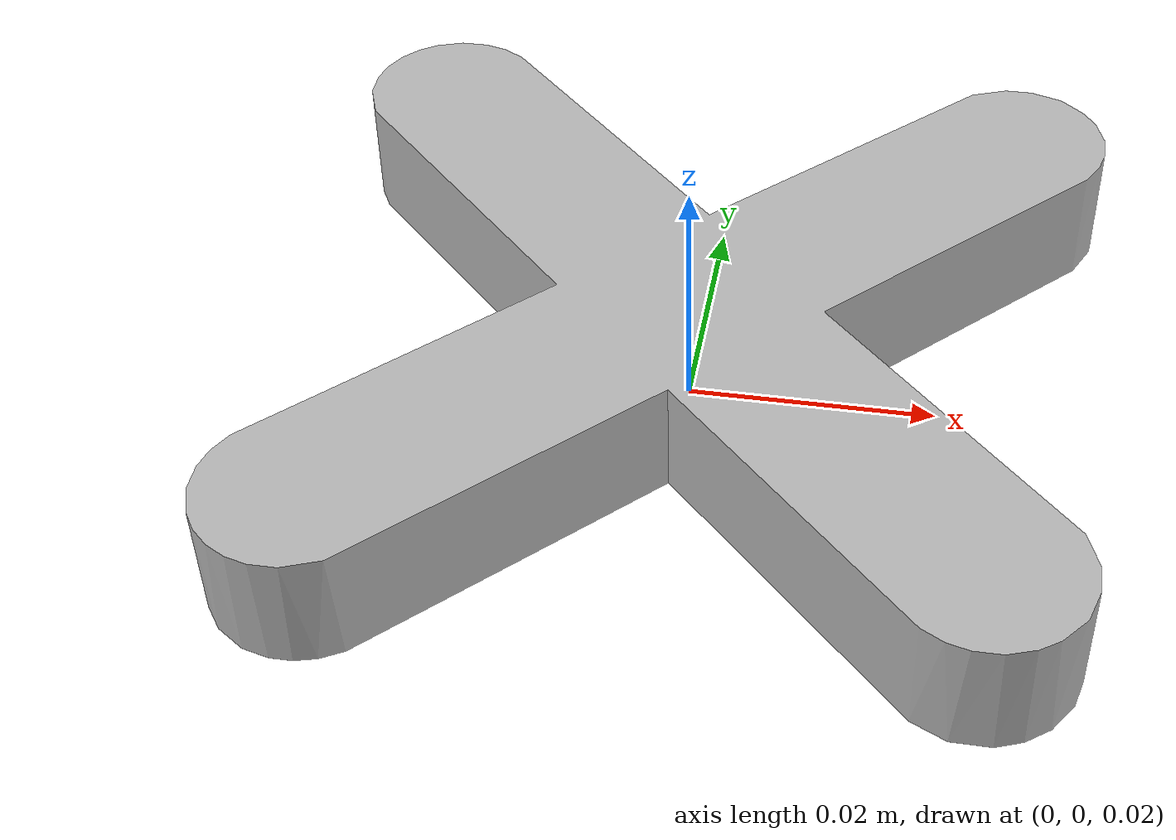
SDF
<?xml version="1.0" ?>

<sdf version="1.6">

<!-- Cubes -->
  <model name="x1">
    <link name="link">
      <pose>0 0 0.025 0 0 0</pose>
      <inertial>
        <mass>0.010</mass>
        <inertia>
          <ixx>1.0</ixx>
          <ixy>0</ixy>
          <ixz>0</ixz>
          <iyy>1.0</iyy>
          <iyz>0</iyz>
          <izz>0.5</izz>
        </inertia>
      </inertial>
      <collision name="collision">
        <geometry>
          <box>
            <size>0.06 0.06 0.005</size>
          </box>
        </geometry>
        <surface>
          <contact>
            <poissons_ratio>0.347</poissons_ratio>
            <elastic_modulus>8.8e+09</elastic_modulus>
            <ode>
              <kp>100000</kp>
              <kd>1</kd>
              <max_vel>1.0</max_vel>
              <min_depth>0.001</min_depth>
            </ode>
          </contact>
          <friction>
            <torsional>
              <coefficient>1.0</coefficient>
              <use_patch_radius>0</use_patch_radius>
              <surface_radius>0.05</surface_radius>
            </torsional>
          </friction>
        </surface>
      </collision>
      <visual name="visual">
        <geometry>
          <mesh><uri>model://meshes/piece_x.dae</uri></mesh>
        </geometry>
      </visual>
    </link>
  </model>

</sdf>
